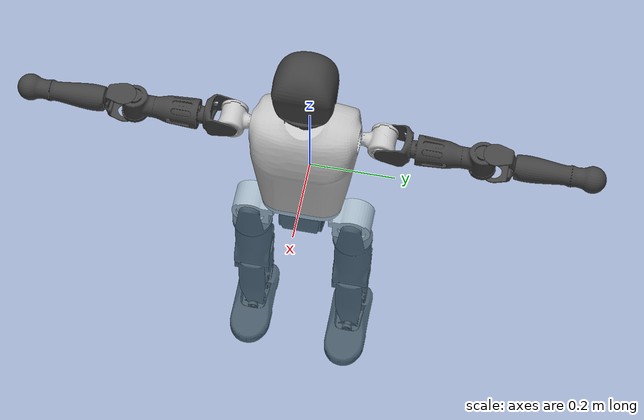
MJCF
<mujoco model="T1">
  <compiler angle="radian" assetdir="assets" balanceinertia="true" inertiafromgeom="false"/>

  <option timestep="0.005" density="1.2" viscosity="2e-05"/>

  <size nkey="1"/>

  <visual>
    <quality shadowsize="8192"/>
    <map shadowclip="0.5"/>
  </visual>

  <default>
    <default class="/">
      <joint armature="0.01" damping="0.01" frictionloss="0.1"/>
      <geom contype="0" conaffinity="0" group="1" solref="-1000 -80"/>
      <site size="0.01 0.005 0.005" group="5"/>
      <general forcelimited="true" biastype="affine" gainprm="25" biasprm="0 -25 -0.6"/>
      <default class="t1">
        <geom rgba="0.25 0.25 0.25 1"/>
        <default class="visual">
          <geom type="mesh" group="2"/>
        </default>
        <default class="collision">
          <geom group="3"/>
        </default>
        <default class="foot">
          <geom size="0.1115 0.05 0.015" type="box" condim="6" group="4" priority="1" solimp="0.015 1 0.015"/>
        </default>
        <default class="reward_collision_sphere">
          <geom group="5" rgba="1 0 0 1"/>
        </default>
      </default>
    </default>
  </default>

  <asset>
    <texture type="skybox" colorspace="auto" name="//unnamed_texture_0" builtin="gradient" rgb1="0.95 0.95 0.95" rgb2="0.95 0.95 0.95" width="100" height="600"/>
    <texture type="2d" colorspace="auto" name="texplane" builtin="checker" rgb1="0.345 0.575 0.748" rgb2="0.345 0.575 0.748" markrgb="1 1 1" width="512" height="512"/>
    <material name="MatPlane" class="/" texture="texplane" texuniform="true" texrepeat="2 2" specular="0.9"/>
    <mesh name="Trunk" class="/" file="Trunk.stl"/>
    <mesh name="H1" class="/" file="H1.stl"/>
    <mesh name="H2" class="/" file="H2.stl"/>
    <mesh name="AL1" class="/" file="AL1.stl"/>
    <mesh name="AL2" class="/" file="AL2.stl"/>
    <mesh name="AL3" class="/" file="AL3.stl"/>
    <mesh name="left_hand_link" class="/" file="left_hand_link.stl"/>
    <mesh name="AR1" class="/" file="AR1.stl"/>
    <mesh name="AR2" class="/" file="AR2.stl"/>
    <mesh name="AR3" class="/" file="AR3.stl"/>
    <mesh name="right_hand_link" class="/" file="right_hand_link.stl"/>
    <mesh name="Waist" class="/" file="Waist.stl"/>
    <mesh name="Hip_Pitch_Left" class="/" file="Hip_Pitch_Left.stl"/>
    <mesh name="Hip_Roll_Left" class="/" file="Hip_Roll_Left.stl"/>
    <mesh name="Hip_Yaw_Left" class="/" file="Hip_Yaw_Left.stl"/>
    <mesh name="Shank_Left" class="/" file="Shank_Left.stl"/>
    <mesh name="Ankle_Cross_Left" class="/" file="Ankle_Cross_Left.stl"/>
    <mesh name="left_foot_link" class="/" file="left_foot_link.stl"/>
    <mesh name="Hip_Pitch_Right" class="/" file="Hip_Pitch_Right.stl"/>
    <mesh name="Hip_Roll_Right" class="/" file="Hip_Roll_Right.stl"/>
    <mesh name="Hip_Yaw_Right" class="/" file="Hip_Yaw_Right.stl"/>
    <mesh name="Shank_Right" class="/" file="Shank_Right.stl"/>
    <mesh name="Ankle_Cross_Right" class="/" file="Ankle_Cross_Right.stl"/>
    <mesh name="right_foot_link" class="/" file="right_foot_link.stl"/>
  </asset>

  <worldbody>
    <geom name="floor" class="/" size="100 100 0.125" type="plane" group="0" material="MatPlane"/>
    <light name="toplight_shadow" class="/" pos="0 0 5" dir="0.0990148 0.0990148 -0.990148" type="directional" ambient="0.04 0.04 0.04" diffuse="0.55 0.55 0.55" specular="0.12 0.12 0.12"/>
    <light name="toplight_fill" class="/" pos="0 0 5" dir="0.0990148 0.0990148 -0.990148" type="directional" castshadow="false" ambient="0.04 0.04 0.04" diffuse="0.3 0.3 0.3" specular="0.08 0.08 0.08"/>
    <body name="trunk" childclass="t1" pos="0.000816681 0.000813829 0.00263581" quat="0.999998 -0.00155691 5.96511e-05 -0.00076573">
      <inertial pos="0.0440215 -0.000942611 0.101443" quat="0.999957 0.000531866 -0.00926246 -0.000267478" mass="11.5842" diaginertia="0.0321737 0.174565 0.0445772"/>
      <joint name="//unnamed_joint_0" type="free" armature="0" damping="0" frictionloss="0"/>
      <geom name="//unnamed_geom_1" class="visual" rgba="0.76 0.76 0.76 1" mesh="Trunk"/>
      <geom name="//unnamed_geom_2" class="collision" size="0.0733161 0.0977548 0.146632" pos="0.0486387 0 0.114629" type="box"/>
      <geom name="//unnamed_geom_3" class="reward_collision_sphere" size="0.112418" pos="0.0486387 0 0.0955243"/>
      <geom name="//unnamed_geom_4" class="reward_collision_sphere" size="0.0146632" pos="0.0486387 0.0991742 0"/>
      <geom name="//unnamed_geom_5" class="reward_collision_sphere" size="0.0146632" pos="0.0486387 -0.0991742 0"/>
      <geom name="//unnamed_geom_6" class="reward_collision_sphere" size="0.0146632" pos="0.0486387 0.124843 0.171944"/>
      <geom name="//unnamed_geom_7" class="reward_collision_sphere" size="0.0146632" pos="0.0486387 -0.124843 0.171944"/>
      <site name="imu" pos="0.0123174 -0.00664476 0.00431735" size="0.00977548"/>
      <camera name="track" pos="0 -2.33351 0" quat="0.707107 0.707107 0 0" mode="trackcom"/>
      <camera name="ego_camera" pos="0.0988988 0 0.401202" quat="-0.5 -0.5 0.5 0.5"/>
      <body name="H1" pos="0.050553 -0.000103307 0.231527" quat="1 -0.000742787 -0.000344784 0.000545503">
        <inertial pos="-0.00169004 -8.45199e-05 0.0574739" quat="0.76317 -0.0122248 -0.000585035 0.646082" mass="0.431418" diaginertia="8.87858e-05 0.000488009 0.000122071"/>
        <joint name="AAHead_yaw" pos="0 0 0" axis="-0.00444717 -0.00134752 0.999989" range="-1.48856 1.51928" armature="0.0102647" damping="0" frictionloss="0.109427"/>
        <geom name="//unnamed_geom_8" class="visual" mesh="H1"/>
        <body name="H2" pos="-0.00424331 0.00238869 0.058436" quat="0.999999 0.000515086 0.00141434 -0.000158792">
          <inertial pos="0.00607648 0.00293249 0.0951892" quat="0.988368 0.106996 -0.0748451 -0.0779606" mass="0.606628" diaginertia="0.00070232 0.00412474 0.00135804"/>
          <joint name="Head_pitch" pos="0 0 0" axis="0.00749454 -0.999938 0.00826027" range="-1.22297 0.298854" armature="0.00899764" damping="0" frictionloss="0.0826853"/>
          <geom name="//unnamed_geom_9" class="visual" mesh="H2"/>
          <geom name="//unnamed_geom_10" class="collision" size="0.0782038" pos="0.00810646 0 0.105077"/>
          <geom name="//unnamed_geom_11" class="reward_collision_sphere" size="0.0879793" pos="0.0162129 0 0.0955243"/>
        </body>
      </body>
      <body name="AL1" pos="0.0444096 0.125891 0.211016" quat="1 -0.000785376 -0.000223754 8.65378e-05">
        <inertial pos="0.00248568 0.0501035 -0.00232818" quat="0.504224 0.495497 -0.504287 0.495919" mass="0.488561" diaginertia="0.000487164 0.00261559 0.000225931"/>
        <joint name="Left_Shoulder_Pitch" pos="0 0 0" axis="-4.59539e-05 0.999999 0.00157583" range="-3.33666 1.22117" armature="0.010051" damping="0.0156827" frictionloss="0.0863065"/>
        <geom name="//unnamed_geom_12" class="visual" rgba="0.76 0.76 0.76 1" mesh="AL1"/>
        <body name="AL2" pos="0.0035264 0.054321 0.0032462" quat="0.999999 0.000232541 -0.00102766 -0.000742719">
          <inertial pos="0.000990509 0.0447561 0.00153811" quat="0.487783 0.518269 -0.479277 0.513573" mass="0.147264" diaginertia="0.000134455 0.000730683 0.000143707"/>
          <joint name="Left_Shoulder_Roll" pos="0 0 0" axis="-0.999911 0.0126871 -0.00401102" range="-1.5926 1.69017" armature="0.010904" damping="0.00710082" frictionloss="0.110379"/>
          <geom name="//unnamed_geom_13" class="visual" mesh="AL2"/>
          <body name="AL3" pos="0.00309917 0.0691401 -0.000812635" quat="0.999999 0.000334404 -0.00107125 0.000342987">
            <inertial pos="-0.00259822 0.0995024 -0.00178137" quat="0.704729 0.709475 -0.00124707 -0.000731975" mass="0.948182" diaginertia="0.00462094 0.0273168 0.000483236"/>
            <joint name="Left_Elbow_Pitch" pos="0 0 0" axis="0.00986836 -0.999949 -0.0020919" range="-2.23017 2.27956" armature="0.00860002" damping="0.0158245" frictionloss="0.108867"/>
            <geom name="//unnamed_geom_14" class="visual" mesh="AL3"/>
            <geom name="//unnamed_geom_15" class="collision" size="0.0293264 0.0733161" pos="0 0.0583378 0" quat="0.707105 0.707108 0 0" type="cylinder"/>
            <geom name="//unnamed_geom_16" class="reward_collision_sphere" size="0.0351917"/>
            <body name="left_hand_link" pos="-0.000557767 0.174184 -0.00337906" quat="0.999999 0.000844633 0.000710776 -0.000641174">
              <inertial pos="-0.000346576 0.129888 0.000775473" quat="0.707907 0.706306 -0.000305277 -0.000552809" mass="0.284766" diaginertia="0.00284083 0.0169723 0.00016338"/>
              <joint name="Left_Elbow_Yaw" pos="0 0 0" axis="-0.00151671 0.0071391 0.999973" range="-2.39247 -0.00184656" armature="0.0110013" damping="0.0120282" frictionloss="0.102254"/>
              <geom name="//unnamed_geom_17" class="visual" mesh="left_hand_link"/>
              <geom name="//unnamed_geom_18" class="collision" size="0.0293264 0.0855355" pos="0 0.151678 0" quat="0.707105 0.707108 0 0" type="cylinder"/>
              <geom name="//unnamed_geom_19" class="reward_collision_sphere" size="0.0488774"/>
              <geom name="//unnamed_geom_20" class="reward_collision_sphere" size="0.0342142" pos="0 0.128343 0"/>
              <geom name="//unnamed_geom_21" class="reward_collision_sphere" size="0.0342142" pos="0 0.250852 0"/>
            </body>
          </body>
        </body>
      </body>
      <body name="AR1" pos="0.0465698 -0.120505 0.208361" quat="1 -0.000386243 -6.32374e-05 -0.000768913">
        <inertial pos="-0.000959914 -0.0547849 0.00255139" quat="0.50176 0.488929 -0.507759 0.501365" mass="0.479832" diaginertia="0.000467819 0.00267815 0.000227737"/>
        <joint name="Right_Shoulder_Pitch" pos="0 0 0" axis="0.0183664 -0.999803 -0.00755977" stiffness="0.00298215" range="-1.23226 3.32578" armature="0.00880482" damping="0.00547293" frictionloss="0.104887"/>
        <geom name="//unnamed_geom_22" class="visual" rgba="0.76 0.76 0.76 1" mesh="AR1"/>
        <body name="AR2" pos="0.000733968 -0.0510806 0.00417342" quat="1 0.000304139 -0.000323986 0.000221232">
          <inertial pos="0.000589429 -0.0449195 0.000729374" quat="0.511845 0.486529 -0.512495 0.48852" mass="0.151364" diaginertia="0.000133575 0.000723688 0.000142366"/>
          <joint name="Right_Shoulder_Roll" pos="0 0 0" axis="-1 0.000434697 -0.000683087" range="-1.68275 1.55423" armature="0.00940845" damping="0.0162722" frictionloss="0.0906016"/>
          <geom name="//unnamed_geom_23" class="visual" mesh="AR2"/>
          <body name="AR3" pos="0.0032801 -0.0712874 -0.00312443" quat="0.999999 9.78656e-05 3.90055e-05 0.00136358">
            <inertial pos="0.00306438 -0.0997318 0.00285797" quat="0.708497 0.705714 -0.000789213 0.000287853" mass="0.940804" diaginertia="0.0045481 0.0285216 0.000495423"/>
            <joint name="Right_Elbow_Pitch" pos="0 0 0" axis="0.00764114 0.99996 -0.00456383" stiffness="0.0141979" range="-2.26474 2.23056" armature="0.00997361" damping="0.00562381" frictionloss="0.0911509"/>
            <geom name="//unnamed_geom_24" class="visual" mesh="AR3"/>
            <geom name="//unnamed_geom_25" class="collision" size="0.0293264 0.0733161" pos="0 -0.0583378 0" quat="0.707105 0.707108 0 0" type="cylinder"/>
            <geom name="//unnamed_geom_26" class="reward_collision_sphere" size="0.0351917"/>
            <body name="right_hand_link" pos="-0.000657074 -0.170021 -0.00326364" quat="1 -0.000249329 -0.000349556 4.96864e-05">
              <inertial pos="-0.000202036 -0.127984 -0.00184945" quat="0.703566 0.710515 0.0102507 -0.00759564" mass="0.297322" diaginertia="0.00287137 0.0166352 0.000170881"/>
              <joint name="Right_Elbow_Yaw" pos="0 0 0" axis="0.00422829 -0.00596192 0.999973" range="-0.0266888 2.44302" armature="0.00858439" damping="0" frictionloss="0.101251"/>
              <geom name="//unnamed_geom_27" class="visual" mesh="right_hand_link"/>
              <geom name="//unnamed_geom_28" class="collision" size="0.0293264 0.0855355" pos="0 -0.151678 0" quat="0.707105 0.707108 0 0" type="cylinder"/>
              <geom name="//unnamed_geom_29" class="reward_collision_sphere" size="0.0488774"/>
              <geom name="//unnamed_geom_30" class="reward_collision_sphere" size="0.0342142" pos="0 -0.128343 0"/>
              <geom name="//unnamed_geom_31" class="reward_collision_sphere" size="0.0342142" pos="0 -0.250852 0"/>
            </body>
          </body>
        </body>
      </body>
      <body name="Waist" pos="0.0486263 -0.004429 -0.110682" quat="1 0.000173253 0.000141006 0.000250198">
        <inertial pos="0.0042157 -0.000903416 0.00956586" quat="0.984057 -7.08012e-05 -0.177836 0.00246779" mass="2.49829" diaginertia="0.00191043 0.0114936 0.00382825"/>
        <joint name="Waist" pos="0 0 0" axis="0.0137514 -0.00334947 0.9999" range="-1.5692 1.60648" armature="0.00942963" damping="0.0150324" frictionloss="0.100805"/>
        <geom name="//unnamed_geom_32" class="visual" mesh="Waist"/>
        <body name="Hip_Pitch_Left" pos="0.00266789 0.119951 -0.00191496" quat="1 2.95713e-05 -0.000429621 8.90427e-05">
          <inertial pos="0.000114697 -0.00905715 -0.0139622" quat="0.977539 0.209806 0.0191358 0.0056805" mass="0.930442" diaginertia="0.000641273 0.00317948 0.00102734"/>
          <joint name="Left_Hip_Pitch" pos="0 0 0" axis="0.00365672 0.999989 0.00304827" range="-1.81784 1.5614" armature="0.00959811" damping="0.00844441" frictionloss="0.10314"/>
          <geom name="//unnamed_geom_33" class="visual" rgba="0.76 0.76 0.76 1" mesh="Hip_Pitch_Left"/>
          <body name="Hip_Roll_Left" pos="0.0024202 -0.000957379 -0.0214606" quat="1 -0.000265327 0.000343947 -0.000281797">
            <inertial pos="0.00128623 -0.00253444 -0.0511988" quat="0.706802 0.000861745 -0.0141046 0.707271" mass="0.355449" diaginertia="0.000592919 0.00334024 0.000408005"/>
            <joint name="Left_Hip_Roll" pos="0 0 0" axis="-0.999942 0.00831398 -0.0068359" stiffness="0.0047554" range="-1.56429 0.207511" armature="0.00975233" damping="0.0110139" frictionloss="0.0965067"/>
            <geom name="//unnamed_geom_34" class="visual" mesh="Hip_Roll_Left"/>
            <geom name="//unnamed_geom_35" class="reward_collision_sphere" size="0.0537651"/>
            <body name="Hip_Yaw_Left" pos="0.000954439 0.0019713 -0.082419" quat="1 0.000110318 0.000187256 -5.46617e-05">
              <inertial pos="-0.00295842 -0.000744289 -0.0830328" quat="0.695056 -0.0458057 -0.0359645 0.716593" mass="1.99458" diaginertia="0.00847746 0.056036 0.00202229"/>
              <joint name="Left_Hip_Yaw" pos="0 0 0" axis="-4.80816e-05 0.00186888 -0.999998" stiffness="0.0156949" range="-0.99044 1.00296" armature="0.0096656" damping="0" frictionloss="0.105647"/>
              <geom name="//unnamed_geom_36" class="visual" mesh="Hip_Yaw_Left"/>
              <geom name="//unnamed_geom_37" class="collision" size="0.0488774 0.0782038" type="cylinder"/>
              <body name="Shank_Left" pos="-0.0116537 -0.00208343 -0.129976" quat="0.999999 -0.00108695 0.000232583 0.00112462">
                <inertial pos="-0.00274664 0.00432159 -0.12164" quat="0.998037 -0.000667576 -0.0174937 0.0601279" mass="1.66832" diaginertia="0.0123155 0.0756704 0.00151643"/>
                <joint name="Left_Knee_Pitch" pos="0 0 0" axis="-0.00644772 0.999916 -0.0112104" range="-0.0544893 2.34467" armature="0.00995606" damping="0" frictionloss="0.107829"/>
                <geom name="//unnamed_geom_38" class="visual" mesh="Shank_Left"/>
                <geom name="//unnamed_geom_39" class="collision" size="0.0488774 0.0733161" pos="0 0 -0.114629" type="cylinder"/>
                <geom name="//unnamed_geom_40" class="reward_collision_sphere" size="0.0635406"/>
                <body name="Ankle_Cross_Left" pos="0.00295491 -0.00259834 -0.267391" quat="1 4.18228e-05 -3.01582e-05 2.53011e-05">
                  <inertial pos="-0.0014916 -0.000687174 -0.00734178" quat="0.450409 0.543595 0.558646 0.435374" mass="0.072726" diaginertia="1.01382e-05 5.62284e-05 9.22546e-06"/>
                  <joint name="Left_Ankle_Pitch" pos="0 0 0" axis="-0.00221159 0.999997 0.00140239" range="-0.889904 0.378958" armature="0.00925998" damping="0" frictionloss="0.101523"/>
                  <geom name="//unnamed_geom_41" class="visual" mesh="Ankle_Cross_Left"/>
                  <body name="left_foot_link" pos="-0.000520846 -0.000102833 -0.0109951" quat="1 -5.52339e-05 -0.000242744 0.00022803">
                    <inertial pos="-0.000334965 -0.000419768 -0.0124376" quat="0.00185008 0.621521 -0.000170983 0.783395" mass="0.612969" diaginertia="0.000913465 0.00494899 0.00165109"/>
                    <joint name="Left_Ankle_Roll" pos="0 0 0" axis="-0.999962 0.0047363 -0.00736339" stiffness="0.00616204" range="-0.451378 0.48279" armature="0.0095417" damping="0" frictionloss="0.0983403"/>
                    <geom name="//unnamed_geom_42" class="visual" mesh="left_foot_link"/>
                    <geom name="left_foot" class="foot" size="0.100406 0.0443174 0.0155599" pos="0.00810646 0 -0.0143286"/>
                    <geom name="//unnamed_geom_44" class="reward_collision_sphere" size="0.0508325" pos="0.00810646 0 -0.0143286"/>
                    <geom name="//unnamed_geom_45" class="reward_collision_sphere" size="0.0293264" pos="0.0770113 -0.0268354 -0.0143286"/>
                    <geom name="//unnamed_geom_46" class="reward_collision_sphere" size="0.0293264" pos="-0.0567452 -0.0268354 -0.0143286"/>
                    <site name="left_foot" class="foot" pos="0.00810646 0 -0.0143286" size="0.00977548"/>
                  </body>
                </body>
              </body>
            </body>
          </body>
        </body>
        <body name="Hip_Pitch_Right" pos="-0.000363623 -0.123613 -0.00165935" quat="0.999999 -0.000265676 0.00119308 2.67107e-05">
          <inertial pos="-2.66122e-05 0.012065 -0.0143034" quat="0.972867 -0.230587 0.0117223 -0.0148842" mass="0.982989" diaginertia="0.000666117 0.00325486 0.00104839"/>
          <joint name="Right_Hip_Pitch" pos="0 0 0" axis="0.00121105 -0.999998 -0.00177557" range="-1.5503 1.82595" armature="0.00959159" damping="0.0149881" frictionloss="0.083157"/>
          <geom name="//unnamed_geom_47" class="visual" rgba="0.76 0.76 0.76 1" mesh="Hip_Pitch_Right"/>
          <body name="Hip_Roll_Right" pos="0.00154705 -0.00106151 -0.0193871" quat="1 -0.000280255 -5.76381e-05 -0.000283183">
            <inertial pos="-0.00147274 -0.000273909 -0.0490946" quat="0.706944 -0.0067937 -0.0054399 0.707216" mass="0.358832" diaginertia="0.000641867 0.00338144 0.000422529"/>
            <joint name="Right_Hip_Roll" pos="0 0 0" axis="-0.999918 -0.00670854 -0.0108972" range="-0.185662 1.51655" armature="0.00997698" damping="0" frictionloss="0.0936679"/>
            <geom name="//unnamed_geom_48" class="visual" mesh="Hip_Roll_Right"/>
            <geom name="//unnamed_geom_49" class="reward_collision_sphere" size="0.0537651"/>
            <body name="Hip_Yaw_Right" pos="-0.000937099 0.0012925 -0.0795384" quat="1 5.05748e-05 -0.00060057 0.00066604">
              <inertial pos="-0.00453225 -0.00381579 -0.0829891" quat="0.714696 -0.0309745 -0.0336027 0.69794" mass="2.05265" diaginertia="0.0092181 0.0591036 0.00209183"/>
              <joint name="Right_Hip_Yaw" pos="0 0 0" axis="-0.0138044 0.00759723 -0.999876" range="-0.972079 1.01031" armature="0.0097676" damping="0.0021996" frictionloss="0.0984383"/>
              <geom name="//unnamed_geom_50" class="visual" mesh="Hip_Yaw_Right"/>
              <geom name="//unnamed_geom_51" class="collision" size="0.0488774 0.0782038" type="cylinder"/>
              <body name="Shank_Right" pos="-0.0141028 -0.00143888 -0.131349" quat="1 1.34032e-05 1.17057e-06 -7.02333e-06">
                <inertial pos="-0.000653543 0.00266875 -0.117955" quat="0.999588 -0.00158071 -0.00817227 -0.0274744" mass="1.74512" diaginertia="0.0123733 0.0783473 0.0016291"/>
                <joint name="Right_Knee_Pitch" pos="0 0 0" axis="0.00086193 -0.999999 0.00121412" stiffness="0.00889688" range="-2.34385 0.0325099" armature="0.00927549" damping="0.00628139" frictionloss="0.0957216"/>
                <geom name="//unnamed_geom_52" class="visual" mesh="Shank_Right"/>
                <geom name="//unnamed_geom_53" class="collision" size="0.0488774 0.0733161" pos="0 0 -0.114629" type="cylinder"/>
                <geom name="//unnamed_geom_54" class="reward_collision_sphere" size="0.0635406"/>
                <body name="Ankle_Cross_Right" pos="-0.0013403 -0.00220397 -0.266225" quat="0.999999 0.0012409 0.000268268 0.00017049">
                  <inertial pos="-0.0031205 -0.00139136 -0.00863783" quat="0.442952 0.554583 0.545092 0.446213" mass="0.064814" diaginertia="9.7061e-06 5.2423e-05 8.75484e-06"/>
                  <joint name="Right_Ankle_Pitch" pos="0 0 0" axis="-0.00426037 -0.999991 0.000240474" range="-0.435249 0.887" armature="0.00872961" damping="0.0168139" frictionloss="0.0940727"/>
                  <geom name="//unnamed_geom_55" class="visual" mesh="Ankle_Cross_Right"/>
                  <body name="right_foot_link" pos="-0.00308527 -0.00308521 -0.0112946" quat="1 -3.34417e-05 -4.29424e-05 -1.96991e-05">
                    <inertial pos="0.000637106 -0.00232399 -0.0120688" quat="-0.00380463 0.621075 0.00961473 0.783683" mass="0.618889" diaginertia="0.000949755 0.00507642 0.00167386"/>
                    <joint name="Right_Ankle_Roll" pos="0 0 0" axis="-1 0.000302936 -0.00044902" range="-0.494057 0.434135" armature="0.0106964" damping="0" frictionloss="0.0772856"/>
                    <geom name="//unnamed_geom_56" class="visual" mesh="right_foot_link"/>
                    <geom name="right_foot" class="foot" size="0.10048 0.0544909 0.0125344" pos="0.00810646 0 -0.0143286"/>
                    <geom name="//unnamed_geom_58" class="reward_collision_sphere" size="0.0391019"/>
                    <geom name="//unnamed_geom_59" class="reward_collision_sphere" size="0.0293264" pos="0.00810646 0 -0.0143286"/>
                    <geom name="//unnamed_geom_60" class="reward_collision_sphere" size="0.0293264" pos="0.0770113 0.0268354 -0.0143286"/>
                    <geom name="//unnamed_geom_61" class="reward_collision_sphere" size="0.0293264" pos="-0.0567452 0.0268354 -0.0143286"/>
                    <site name="right_foot" class="foot" pos="0.00810646 0 -0.0143286" size="0.00977548"/>
                  </body>
                </body>
              </body>
            </body>
          </body>
        </body>
      </body>
    </body>
  </worldbody>

  <contact>
    <pair class="/" geom1="floor" geom2="left_foot" name="//unnamed_contact_0"/>
    <pair class="/" geom1="floor" geom2="right_foot" name="//unnamed_contact_1"/>
  </contact>

  <actuator>
    <general name="AAHead_yaw" class="/" joint="AAHead_yaw" forcerange="-6.73117 6.73117" gainprm="24.1378" biasprm="0 -24.1378 -0.573055"/>
    <general name="Head_pitch" class="/" joint="Head_pitch" forcerange="-7.3751 7.3751" gainprm="24.1378" biasprm="0 -24.1378 -0.573055"/>
    <general name="Left_Shoulder_Pitch" class="/" joint="Left_Shoulder_Pitch" forcerange="-16.0784 16.0784" gainprm="24.1378" biasprm="0 -24.1378 -0.573055"/>
    <general name="Left_Shoulder_Roll" class="/" joint="Left_Shoulder_Roll" forcerange="-19.1629 19.1629" gainprm="24.1378" biasprm="0 -24.1378 -0.573055"/>
    <general name="Left_Elbow_Pitch" class="/" joint="Left_Elbow_Pitch" forcerange="-18.511 18.511" gainprm="24.1378" biasprm="0 -24.1378 -0.573055"/>
    <general name="Left_Elbow_Yaw" class="/" joint="Left_Elbow_Yaw" forcerange="-17.6694 17.6694" gainprm="24.1378" biasprm="0 -24.1378 -0.573055"/>
    <general name="Right_Shoulder_Pitch" class="/" joint="Right_Shoulder_Pitch" forcerange="-19.5687 19.5687" gainprm="24.1378" biasprm="0 -24.1378 -0.573055"/>
    <general name="Right_Shoulder_Roll" class="/" joint="Right_Shoulder_Roll" forcerange="-18.4001 18.4001" gainprm="24.1378" biasprm="0 -24.1378 -0.573055"/>
    <general name="Right_Elbow_Pitch" class="/" joint="Right_Elbow_Pitch" forcerange="-17.6052 17.6052" gainprm="24.1378" biasprm="0 -24.1378 -0.573055"/>
    <general name="Right_Elbow_Yaw" class="/" joint="Right_Elbow_Yaw" forcerange="-17.6799 17.6799" gainprm="24.1378" biasprm="0 -24.1378 -0.573055"/>
    <general name="Waist" class="/" joint="Waist" forcerange="-29.9223 29.9223" gainprm="24.1378" biasprm="0 -24.1378 -0.573055"/>
    <general name="Left_Hip_Pitch" class="/" joint="Left_Hip_Pitch" forcerange="-42.6446 42.6446" gainprm="24.1378" biasprm="0 -24.1378 -0.573055"/>
    <general name="Left_Hip_Roll" class="/" joint="Left_Hip_Roll" forcerange="-26.0197 26.0197" gainprm="24.1378" biasprm="0 -24.1378 -0.573055"/>
    <general name="Left_Hip_Yaw" class="/" joint="Left_Hip_Yaw" forcerange="-28.2188 28.2188" gainprm="24.1378" biasprm="0 -24.1378 -0.573055"/>
    <general name="Left_Knee_Pitch" class="/" joint="Left_Knee_Pitch" forcerange="-52.9797 52.9797" gainprm="24.1378" biasprm="0 -24.1378 -0.573055"/>
    <general name="Left_Ankle_Pitch" class="/" joint="Left_Ankle_Pitch" forcerange="-18.6937 18.6937" gainprm="24.1378" biasprm="0 -24.1378 -0.573055"/>
    <general name="Left_Ankle_Roll" class="/" joint="Left_Ankle_Roll" forcerange="-13.8213 13.8213" gainprm="24.1378" biasprm="0 -24.1378 -0.573055"/>
    <general name="Right_Hip_Pitch" class="/" joint="Right_Hip_Pitch" forcerange="-46.7284 46.7284" gainprm="24.1378" biasprm="0 -24.1378 -0.573055"/>
    <general name="Right_Hip_Roll" class="/" joint="Right_Hip_Roll" forcerange="-27.5703 27.5703" gainprm="24.1378" biasprm="0 -24.1378 -0.573055"/>
    <general name="Right_Hip_Yaw" class="/" joint="Right_Hip_Yaw" forcerange="-30.3522 30.3522" gainprm="24.1378" biasprm="0 -24.1378 -0.573055"/>
    <general name="Right_Knee_Pitch" class="/" joint="Right_Knee_Pitch" forcerange="-56.2946 56.2946" gainprm="24.1378" biasprm="0 -24.1378 -0.573055"/>
    <general name="Right_Ankle_Pitch" class="/" joint="Right_Ankle_Pitch" forcerange="-19.1365 19.1365" gainprm="24.1378" biasprm="0 -24.1378 -0.573055"/>
    <general name="Right_Ankle_Roll" class="/" joint="Right_Ankle_Roll" forcerange="-14.2848 14.2848" gainprm="24.1378" biasprm="0 -24.1378 -0.573055"/>
  </actuator>

  <sensor>
    <gyro site="imu" name="imu_angular_velocity"/>
    <velocimeter site="imu" name="imu_linear_velocity"/>
    <framelinvel objtype="site" objname="left_foot" name="left_foot_global_linear_velocity"/>
    <framelinvel objtype="site" objname="right_foot" name="right_foot_global_linear_velocity"/>
  </sensor>

  <keyframe>
    <key name="home" qpos="0 0 0.6385 1 0 0 0 0 0 0 1.4 0 -0.4 0 -1.4 0 0.4 0 -0.4 0 0 0.8 -0.4 0 0.4 0 0 -0.8 0.4 0"/>
  </keyframe>
</mujoco>
